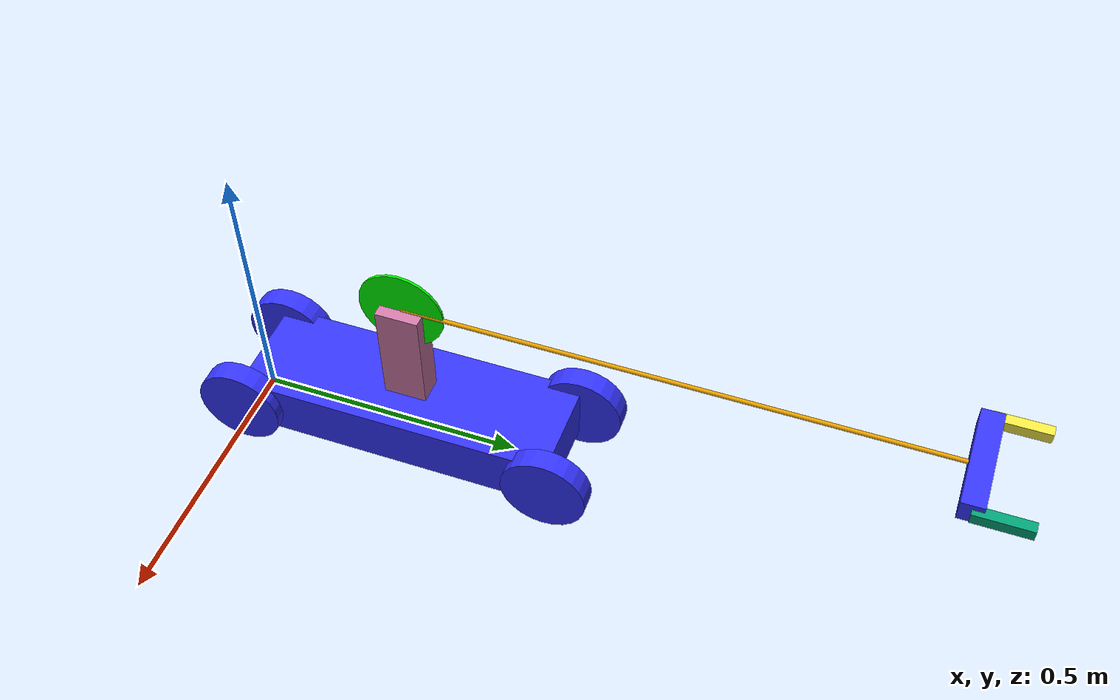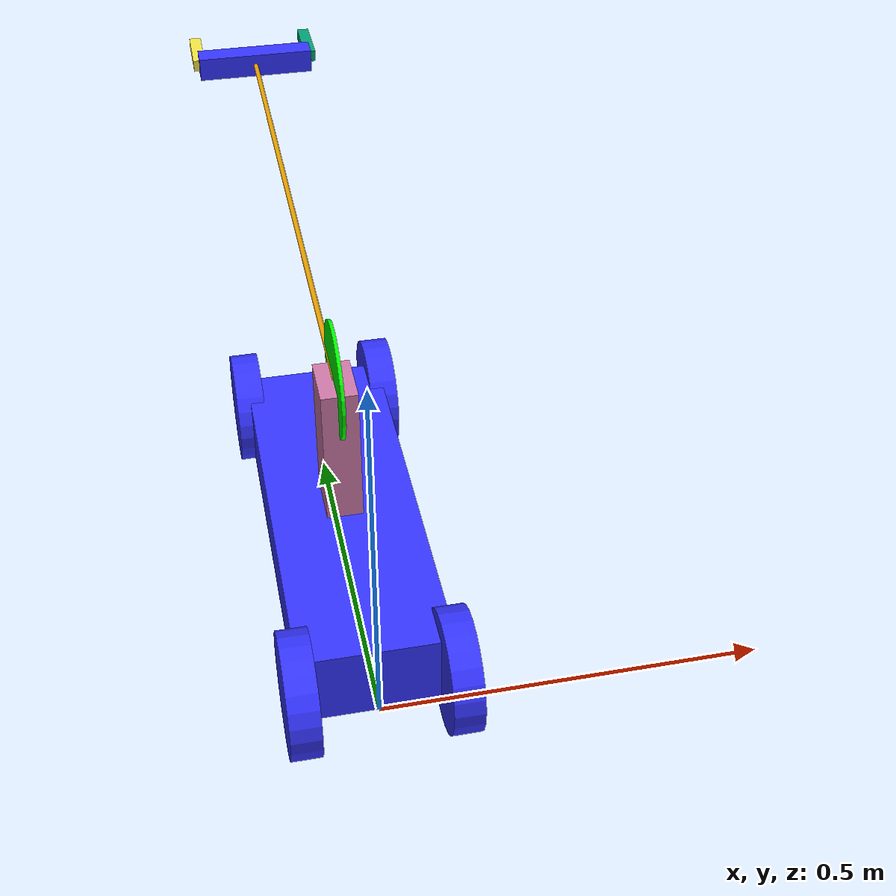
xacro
<?xml version="1.0"?>
<robot xmlns:xacro="http://www.ros.org/wiki/xacro" >

    <xacro:include filename="inertial_macros.xacro"/>

    <material name="white">
        <color rgba="1 1 1 1" />
    </material>

    <material name="orange">
        <color rgba="1 0.3 0.1 1"/>
    </material>

    <material name="blue">
        <color rgba="0.2 0.2 1 1"/>
    </material>

    <material name="black">
        <color rgba="0 0 0 1"/>
    </material>

    <material name="gray">
        <color rgba="0.1 0.1 0.1 1"/>
    </material>

    <link name = "base_link"/>

    <joint name = "chassis_joint" type = "fixed">
        <parent link = "base_link"/>
        <child link = "chassis"/>
        <origin xyz = "0 0 0.1"/>
    </joint>

    <link name = "chassis">
        <origin xyz = "0 0 0"/>
        <visual>
            <origin xyz = "0 0.3 -0.05"/>
            <geometry>
                <box size = "0.2 0.6 0.1"/>
            </geometry>
            <material name = "blue"/>
        </visual>
    </link>

    <joint name="left_back_wheel_joint" type="continuous">
        <parent link="chassis"/>
        <child link="left_back_wheel"/>
        <origin xyz="-0.1 0 -0.05" rpy="0 -${pi/2} 0" />
        <axis xyz="0 0 1"/>
    </joint>

    <link name="left_back_wheel">
        <visual>
            <geometry>
                <cylinder radius="0.08" length="0.04"/>
            </geometry>
            <material name="blue"/>
        </visual>
        <collision>
            <geometry>
                <cylinder radius="0.08" length="0.04"/>
            </geometry>
        </collision>
        <xacro:inertial_cylinder mass="0.1" length="0.04" radius="0.05">
            <origin xyz="0 0 0" rpy="0 0 0"/>
        </xacro:inertial_cylinder>
    </link>

    <joint name="right_back_wheel_joint" type="continuous">
        <parent link="chassis"/>
        <child link="right_back_wheel"/>
        <origin xyz="0.1 0 -0.05" rpy="0 ${pi/2} 0" />
        <axis xyz="0 0 -1"/>
    </joint>

    <link name="right_back_wheel">
        <visual>
            <geometry>
                <cylinder radius="0.08" length="0.04"/>
            </geometry>
            <material name="blue"/>
        </visual>
        <collision>
            <geometry>
                <cylinder radius="0.08" length="0.04"/>
            </geometry>
        </collision>
        <xacro:inertial_cylinder mass="0.1" length="0.04" radius="0.05">
            <origin xyz="0 0 0" rpy="0 0 0"/>
        </xacro:inertial_cylinder>
    </link>

    <joint name="left_front_wheel_joint" type="continuous">
        <parent link="chassis"/>
        <child link="left_front_wheel"/>
        <origin xyz="-0.1 0.6 -0.05" rpy="0 -${pi/2} 0" />
        <axis xyz="0 0 1"/>
    </joint>

    <link name="left_front_wheel">
        <visual>
            <geometry>
                <cylinder radius="0.08" length="0.04"/>
            </geometry>
            <material name="blue"/>
        </visual>
        <collision>
            <geometry>
                <cylinder radius="0.08" length="0.04"/>
            </geometry>
        </collision>
        <xacro:inertial_cylinder mass="0.1" length="0.04" radius="0.05">
            <origin xyz="0 0 0" rpy="0 0 0"/>
        </xacro:inertial_cylinder>
    </link>

    <joint name="right_front_wheel_joint" type="continuous">
        <parent link="chassis"/>
        <child link="right_front_wheel"/>
        <origin xyz="0.1 0.6 -0.05" rpy="0 ${pi/2} 0" />
        <axis xyz="0 0 -1"/>
    </joint>

    <link name="right_front_wheel">
        <visual>
            <geometry>
                <cylinder radius="0.08" length="0.04"/>
            </geometry>
            <material name="blue"/>
        </visual>
        <collision>
            <geometry>
                <cylinder radius="0.08" length="0.04"/>
            </geometry>
        </collision>
        <xacro:inertial_cylinder mass="0.1" length="0.04" radius="0.05">
            <origin xyz="0 0 0" rpy="0 0 0"/>
        </xacro:inertial_cylinder>
    </link>

    <joint name = "crane_wheel_holder_joint" type ="revolute">
        <origin xyz = "0 0.3 0"/>
        <parent link = "chassis"/>
        <child link = "crane_wheel_holder"/>
        <limit lower = "-${pi}" upper = "${pi}" velocity = "0.5" effort = "1.0"/>
        <axis xyz = "0 0 1"/>
    </joint>

    <link name = "crane_wheel_holder">
        <visual>
            <origin xyz = "0 0 0.1"/>
            <geometry>
                <box size = "0.05 0.08 0.2"/>
            </geometry>
        </visual>
    </link>

    <joint name = "crane_wheel_joint" type = "revolute">
        <parent link = "crane_wheel_holder"/>
        <child link = "crane_wheel"/>
        <origin xyz = "0 0 0.2" rpy = "0 0 0"/>

        <axis xyz = "1 0 0"/>

        <limit lower = "-0.76" upper = "1.57" velocity = "5.0" effort = "1.0"/>
    </joint>

    <link name = "crane_wheel">
        <visual>
            <origin xyz = "0 0 0" rpy = "0 1.57 0"/>
            <geometry>
                <cylinder radius = "0.08" length = "0.005"/>
            </geometry>
            <material name = "green">
                <color rgba = "0 1 0 1"/>
            </material>
        </visual>
    </link>

    <joint name = "arm_joint" type = "fixed">
        <origin xyz = "0 0 0"/>
        <parent link = "crane_wheel"/>
        <child link = "arm"/>
    </joint>

    <link name = "arm">
        <origin xyz = "0 0 0"/>
        <visual>
            <origin xyz = "0 0.5 0" rpy = "1.57 0 0"/>
            <geometry>
                <cylinder radius = "0.004" length = "1.0"/>
            </geometry>
        </visual>
        <collision>
            <geometry>
                <cylinder radius="0.004" length="1.0"/>
            </geometry>
        </collision>
        <xacro:inertial_cylinder mass = "1.0" length = "1.0" radius = "0.004">
                <origin xyz = "0 0 0"/>
        </xacro:inertial_cylinder>
    </link>

    <joint name = "claw_base_joint" type = "revolute">
        <origin xyz = "0 1.0 0"/>
        <axis xyz = "1 0 0"/>
        <limit lower = "-0.7" upper = "0.7" velocity = "5.0" effort = "1.0"/>
        <parent link = "arm"/>
        <child link = "claw_base"/>
    </joint>

    <link name = "claw_base">
        <visual>
            <geometry>
                <box size = "0.2 0.04 0.04"/>
            </geometry>
            <material name = "blue"/>
        </visual>
    </link>

    <joint name = "claw_1_joint" type = "revolute">
        <origin xyz = "0.1 0 0"/>
        <parent link = "claw_base"/>
        <child link = "claw_1"/>

        <limit lower = "0" upper = "0.785" velocity = "1.0" effort = "0.3"/>
        <axis xyz = "0 0 1"/>
    </joint>

    <link name = "claw_1">
        <visual>
            <origin xyz = "0 0.05 0"/>
            <geometry>
                <box size = "0.02 0.1 0.02"/>
            </geometry>
        </visual>
    </link>

    <joint name = "claw_2_joint" type = "revolute">
        <origin xyz = "-0.1 0 0" rpy = "0 3.14 0"/>
        <parent link = "claw_base"/>
        <child link = "claw_2"/>

        <limit lower = "0" upper = "0.785" velocity = "1.0" effort = "0.3"/>
        <axis xyz = "0 0 1"/>
    </joint>

    <link name = "claw_2">
        <visual>
            <origin xyz = "0 0.05 0"/>
            <geometry>
                <box size = "0.02 0.1 0.02"/>
            </geometry>
        </visual>
    </link>

</robot>
